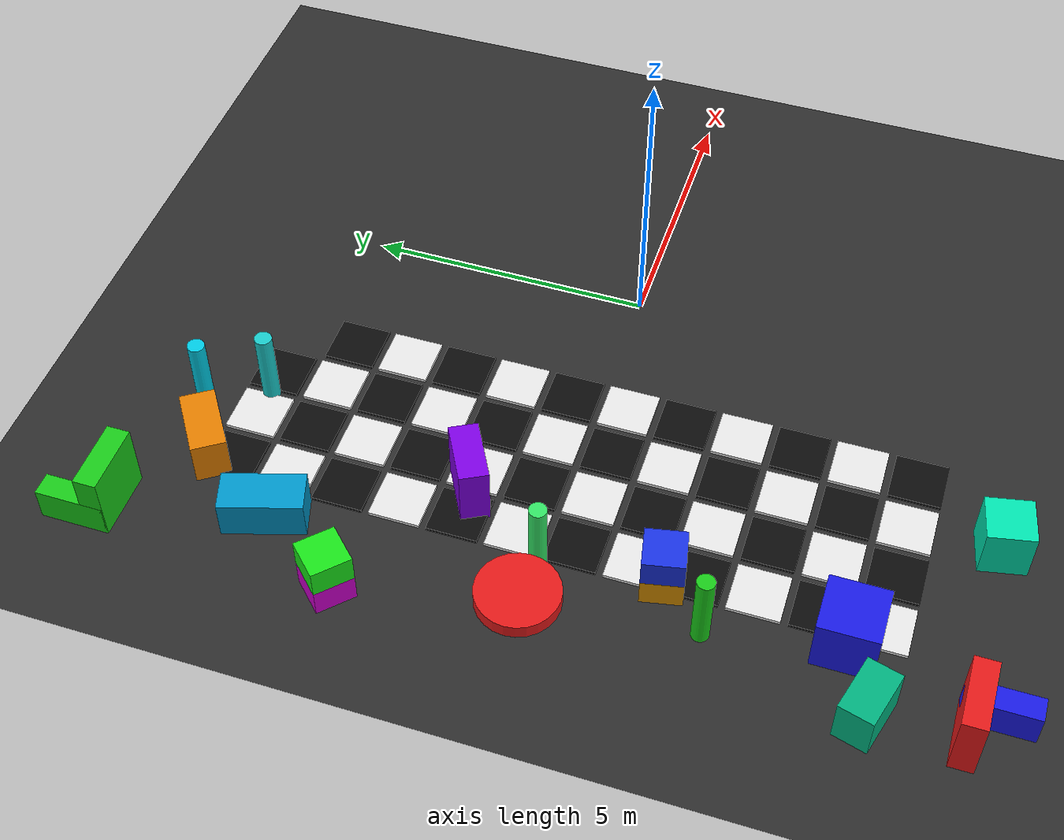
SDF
<sdf version="1.9">
 <world name="slam_world_realistic">
  <model name="ground_plane">
   <static>true</static>
   <link name="ground_link">
    <collision name="collision">
     <geometry><plane><normal>0 0 1</normal><size>80 80</size></plane></geometry>
    </collision>
    <visual name="visual">
     <geometry><plane><normal>0 0 1</normal><size>80 80</size></plane></geometry>
     <material>
      <ambient>0.15 0.15 0.15 1</ambient>
      <diffuse>0.18 0.18 0.18 1</diffuse>
      <specular>0.02 0.02 0.02 1</specular>
     </material>
    </visual>
   </link>
  </model>
  <model name="cb_0">
   <static>true</static>
   <pose>-5.500 -5.500 0.03 0 0 0</pose>
   <link name="link">
    <collision name="col"><geometry><box><size>0.88 0.88 0.06</size></box></geometry></collision>
    <visual name="vis">
     <geometry><box><size>0.88 0.88 0.06</size></box></geometry>
     <material>
      <ambient>0.910 0.910 0.910 1</ambient>
      <diffuse>0.910 0.910 0.910 1</diffuse>
      <specular>0.080 0.080 0.080 1</specular>
     </material>
    </visual>
   </link>
  </model>
  <model name="cb_1">
   <static>true</static>
   <pose>-5.500 -4.500 0.03 0 0 0</pose>
   <link name="link">
    <collision name="col"><geometry><box><size>0.88 0.88 0.06</size></box></geometry></collision>
    <visual name="vis">
     <geometry><box><size>0.88 0.88 0.06</size></box></geometry>
     <material>
      <ambient>0.050 0.050 0.050 1</ambient>
      <diffuse>0.050 0.050 0.050 1</diffuse>
      <specular>0.020 0.020 0.020 1</specular>
     </material>
    </visual>
   </link>
  </model>
  <model name="cb_2">
   <static>true</static>
   <pose>-5.500 -3.500 0.03 0 0 0</pose>
   <link name="link">
    <collision name="col"><geometry><box><size>0.88 0.88 0.06</size></box></geometry></collision>
    <visual name="vis">
     <geometry><box><size>0.88 0.88 0.06</size></box></geometry>
     <material>
      <ambient>0.910 0.910 0.910 1</ambient>
      <diffuse>0.910 0.910 0.910 1</diffuse>
      <specular>0.080 0.080 0.080 1</specular>
     </material>
    </visual>
   </link>
  </model>
  <model name="cb_3">
   <static>true</static>
   <pose>-5.500 -2.500 0.03 0 0 0</pose>
   <link name="link">
    <collision name="col"><geometry><box><size>0.88 0.88 0.06</size></box></geometry></collision>
    <visual name="vis">
     <geometry><box><size>0.88 0.88 0.06</size></box></geometry>
     <material>
      <ambient>0.050 0.050 0.050 1</ambient>
      <diffuse>0.050 0.050 0.050 1</diffuse>
      <specular>0.020 0.020 0.020 1</specular>
     </material>
    </visual>
   </link>
  </model>
  <model name="cb_4">
   <static>true</static>
   <pose>-5.500 -1.500 0.03 0 0 0</pose>
   <link name="link">
    <collision name="col"><geometry><box><size>0.88 0.88 0.06</size></box></geometry></collision>
    <visual name="vis">
     <geometry><box><size>0.88 0.88 0.06</size></box></geometry>
     <material>
      <ambient>0.910 0.910 0.910 1</ambient>
      <diffuse>0.910 0.910 0.910 1</diffuse>
      <specular>0.080 0.080 0.080 1</specular>
     </material>
    </visual>
   </link>
  </model>
  <model name="cb_5">
   <static>true</static>
   <pose>-5.500 -0.500 0.03 0 0 0</pose>
   <link name="link">
    <collision name="col"><geometry><box><size>0.88 0.88 0.06</size></box></geometry></collision>
    <visual name="vis">
     <geometry><box><size>0.88 0.88 0.06</size></box></geometry>
     <material>
      <ambient>0.050 0.050 0.050 1</ambient>
      <diffuse>0.050 0.050 0.050 1</diffuse>
      <specular>0.020 0.020 0.020 1</specular>
     </material>
    </visual>
   </link>
  </model>
  <model name="cb_6">
   <static>true</static>
   <pose>-5.500 0.500 0.03 0 0 0</pose>
   <link name="link">
    <collision name="col"><geometry><box><size>0.88 0.88 0.06</size></box></geometry></collision>
    <visual name="vis">
     <geometry><box><size>0.88 0.88 0.06</size></box></geometry>
     <material>
      <ambient>0.910 0.910 0.910 1</ambient>
      <diffuse>0.910 0.910 0.910 1</diffuse>
      <specular>0.080 0.080 0.080 1</specular>
     </material>
    </visual>
   </link>
  </model>
  <model name="cb_7">
   <static>true</static>
   <pose>-5.500 1.500 0.03 0 0 0</pose>
   <link name="link">
    <collision name="col"><geometry><box><size>0.88 0.88 0.06</size></box></geometry></collision>
    <visual name="vis">
     <geometry><box><size>0.88 0.88 0.06</size></box></geometry>
     <material>
      <ambient>0.050 0.050 0.050 1</ambient>
      <diffuse>0.050 0.050 0.050 1</diffuse>
      <specular>0.020 0.020 0.020 1</specular>
     </material>
    </visual>
   </link>
  </model>
  <model name="cb_8">
   <static>true</static>
   <pose>-5.500 2.500 0.03 0 0 0</pose>
   <link name="link">
    <collision name="col"><geometry><box><size>0.88 0.88 0.06</size></box></geometry></collision>
    <visual name="vis">
     <geometry><box><size>0.88 0.88 0.06</size></box></geometry>
     <material>
      <ambient>0.910 0.910 0.910 1</ambient>
      <diffuse>0.910 0.910 0.910 1</diffuse>
      <specular>0.080 0.080 0.080 1</specular>
     </material>
    </visual>
   </link>
  </model>
  <model name="cb_9">
   <static>true</static>
   <pose>-5.500 3.500 0.03 0 0 0</pose>
   <link name="link">
    <collision name="col"><geometry><box><size>0.88 0.88 0.06</size></box></geometry></collision>
    <visual name="vis">
     <geometry><box><size>0.88 0.88 0.06</size></box></geometry>
     <material>
      <ambient>0.050 0.050 0.050 1</ambient>
      <diffuse>0.050 0.050 0.050 1</diffuse>
      <specular>0.020 0.020 0.020 1</specular>
     </material>
    </visual>
   </link>
  </model>
  <model name="cb_10">
   <static>true</static>
   <pose>-5.500 4.500 0.03 0 0 0</pose>
   <link name="link">
    <collision name="col"><geometry><box><size>0.88 0.88 0.06</size></box></geometry></collision>
    <visual name="vis">
     <geometry><box><size>0.88 0.88 0.06</size></box></geometry>
     <material>
      <ambient>0.910 0.910 0.910 1</ambient>
      <diffuse>0.910 0.910 0.910 1</diffuse>
      <specular>0.080 0.080 0.080 1</specular>
     </material>
    </visual>
   </link>
  </model>
  <model name="cb_11">
   <static>true</static>
   <pose>-5.500 5.500 0.03 0 0 0</pose>
   <link name="link">
    <collision name="col"><geometry><box><size>0.88 0.88 0.06</size></box></geometry></collision>
    <visual name="vis">
     <geometry><box><size>0.88 0.88 0.06</size></box></geometry>
     <material>
      <ambient>0.050 0.050 0.050 1</ambient>
      <diffuse>0.050 0.050 0.050 1</diffuse>
      <specular>0.020 0.020 0.020 1</specular>
     </material>
    </visual>
   </link>
  </model>
  <model name="cb_12">
   <static>true</static>
   <pose>-4.500 -5.500 0.03 0 0 0</pose>
   <link name="link">
    <collision name="col"><geometry><box><size>0.88 0.88 0.06</size></box></geometry></collision>
    <visual name="vis">
     <geometry><box><size>0.88 0.88 0.06</size></box></geometry>
     <material>
      <ambient>0.050 0.050 0.050 1</ambient>
      <diffuse>0.050 0.050 0.050 1</diffuse>
      <specular>0.020 0.020 0.020 1</specular>
     </material>
    </visual>
   </link>
  </model>
  <model name="cb_13">
   <static>true</static>
   <pose>-4.500 -4.500 0.03 0 0 0</pose>
   <link name="link">
    <collision name="col"><geometry><box><size>0.88 0.88 0.06</size></box></geometry></collision>
    <visual name="vis">
     <geometry><box><size>0.88 0.88 0.06</size></box></geometry>
     <material>
      <ambient>0.910 0.910 0.910 1</ambient>
      <diffuse>0.910 0.910 0.910 1</diffuse>
      <specular>0.080 0.080 0.080 1</specular>
     </material>
    </visual>
   </link>
  </model>
  <model name="cb_14">
   <static>true</static>
   <pose>-4.500 -3.500 0.03 0 0 0</pose>
   <link name="link">
    <collision name="col"><geometry><box><size>0.88 0.88 0.06</size></box></geometry></collision>
    <visual name="vis">
     <geometry><box><size>0.88 0.88 0.06</size></box></geometry>
     <material>
      <ambient>0.050 0.050 0.050 1</ambient>
      <diffuse>0.050 0.050 0.050 1</diffuse>
      <specular>0.020 0.020 0.020 1</specular>
     </material>
    </visual>
   </link>
  </model>
  <model name="cb_15">
   <static>true</static>
   <pose>-4.500 -2.500 0.03 0 0 0</pose>
   <link name="link">
    <collision name="col"><geometry><box><size>0.88 0.88 0.06</size></box></geometry></collision>
    <visual name="vis">
     <geometry><box><size>0.88 0.88 0.06</size></box></geometry>
     <material>
      <ambient>0.910 0.910 0.910 1</ambient>
      <diffuse>0.910 0.910 0.910 1</diffuse>
      <specular>0.080 0.080 0.080 1</specular>
     </material>
    </visual>
   </link>
  </model>
  <model name="cb_16">
   <static>true</static>
   <pose>-4.500 -1.500 0.03 0 0 0</pose>
   <link name="link">
    <collision name="col"><geometry><box><size>0.88 0.88 0.06</size></box></geometry></collision>
    <visual name="vis">
     <geometry><box><size>0.88 0.88 0.06</size></box></geometry>
     <material>
      <ambient>0.050 0.050 0.050 1</ambient>
      <diffuse>0.050 0.050 0.050 1</diffuse>
      <specular>0.020 0.020 0.020 1</specular>
     </material>
    </visual>
   </link>
  </model>
  <model name="cb_17">
   <static>true</static>
   <pose>-4.500 -0.500 0.03 0 0 0</pose>
   <link name="link">
    <collision name="col"><geometry><box><size>0.88 0.88 0.06</size></box></geometry></collision>
    <visual name="vis">
     <geometry><box><size>0.88 0.88 0.06</size></box></geometry>
     <material>
      <ambient>0.910 0.910 0.910 1</ambient>
      <diffuse>0.910 0.910 0.910 1</diffuse>
      <specular>0.080 0.080 0.080 1</specular>
     </material>
    </visual>
   </link>
  </model>
  <model name="cb_18">
   <static>true</static>
   <pose>-4.500 0.500 0.03 0 0 0</pose>
   <link name="link">
    <collision name="col"><geometry><box><size>0.88 0.88 0.06</size></box></geometry></collision>
    <visual name="vis">
     <geometry><box><size>0.88 0.88 0.06</size></box></geometry>
     <material>
      <ambient>0.050 0.050 0.050 1</ambient>
      <diffuse>0.050 0.050 0.050 1</diffuse>
      <specular>0.020 0.020 0.020 1</specular>
     </material>
    </visual>
   </link>
  </model>
  <model name="cb_19">
   <static>true</static>
   <pose>-4.500 1.500 0.03 0 0 0</pose>
   <link name="link">
    <collision name="col"><geometry><box><size>0.88 0.88 0.06</size></box></geometry></collision>
    <visual name="vis">
     <geometry><box><size>0.88 0.88 0.06</size></box></geometry>
     <material>
      <ambient>0.910 0.910 0.910 1</ambient>
      <diffuse>0.910 0.910 0.910 1</diffuse>
      <specular>0.080 0.080 0.080 1</specular>
     </material>
    </visual>
   </link>
  </model>
  <model name="cb_20">
   <static>true</static>
   <pose>-4.500 2.500 0.03 0 0 0</pose>
   <link name="link">
    <collision name="col"><geometry><box><size>0.88 0.88 0.06</size></box></geometry></collision>
    <visual name="vis">
     <geometry><box><size>0.88 0.88 0.06</size></box></geometry>
     <material>
      <ambient>0.050 0.050 0.050 1</ambient>
      <diffuse>0.050 0.050 0.050 1</diffuse>
      <specular>0.020 0.020 0.020 1</specular>
     </material>
    </visual>
   </link>
  </model>
  <model name="cb_21">
   <static>true</static>
   <pose>-4.500 3.500 0.03 0 0 0</pose>
   <link name="link">
    <collision name="col"><geometry><box><size>0.88 0.88 0.06</size></box></geometry></collision>
    <visual name="vis">
     <geometry><box><size>0.88 0.88 0.06</size></box></geometry>
     <material>
      <ambient>0.910 0.910 0.910 1</ambient>
      <diffuse>0.910 0.910 0.910 1</diffuse>
      <specular>0.080 0.080 0.080 1</specular>
     </material>
    </visual>
   </link>
  </model>
  <model name="cb_22">
   <static>true</static>
   <pose>-4.500 4.500 0.03 0 0 0</pose>
   <link name="link">
    <collision name="col"><geometry><box><size>0.88 0.88 0.06</size></box></geometry></collision>
    <visual name="vis">
     <geometry><box><size>0.88 0.88 0.06</size></box></geometry>
     <material>
      <ambient>0.050 0.050 0.050 1</ambient>
      <diffuse>0.050 0.050 0.050 1</diffuse>
      <specular>0.020 0.020 0.020 1</specular>
     </material>
    </visual>
   </link>
  </model>
  <model name="cb_23">
   <static>true</static>
   <pose>-4.500 5.500 0.03 0 0 0</pose>
   <link name="link">
    <collision name="col"><geometry><box><size>0.88 0.88 0.06</size></box></geometry></collision>
    <visual name="vis">
     <geometry><box><size>0.88 0.88 0.06</size></box></geometry>
     <material>
      <ambient>0.910 0.910 0.910 1</ambient>
      <diffuse>0.910 0.910 0.910 1</diffuse>
      <specular>0.080 0.080 0.080 1</specular>
     </material>
    </visual>
   </link>
  </model>
  <model name="cb_24">
   <static>true</static>
   <pose>-3.500 -5.500 0.03 0 0 0</pose>
   <link name="link">
    <collision name="col"><geometry><box><size>0.88 0.88 0.06</size></box></geometry></collision>
    <visual name="vis">
     <geometry><box><size>0.88 0.88 0.06</size></box></geometry>
     <material>
      <ambient>0.910 0.910 0.910 1</ambient>
      <diffuse>0.910 0.910 0.910 1</diffuse>
      <specular>0.080 0.080 0.080 1</specular>
     </material>
    </visual>
   </link>
  </model>
  <model name="cb_25">
   <static>true</static>
   <pose>-3.500 -4.500 0.03 0 0 0</pose>
   <link name="link">
    <collision name="col"><geometry><box><size>0.88 0.88 0.06</size></box></geometry></collision>
    <visual name="vis">
     <geometry><box><size>0.88 0.88 0.06</size></box></geometry>
     <material>
      <ambient>0.050 0.050 0.050 1</ambient>
      <diffuse>0.050 0.050 0.050 1</diffuse>
      <specular>0.020 0.020 0.020 1</specular>
     </material>
    </visual>
   </link>
  </model>
  <model name="cb_26">
   <static>true</static>
   <pose>-3.500 -3.500 0.03 0 0 0</pose>
   <link name="link">
    <collision name="col"><geometry><box><size>0.88 0.88 0.06</size></box></geometry></collision>
    <visual name="vis">
     <geometry><box><size>0.88 0.88 0.06</size></box></geometry>
     <material>
      <ambient>0.910 0.910 0.910 1</ambient>
      <diffuse>0.910 0.910 0.910 1</diffuse>
      <specular>0.080 0.080 0.080 1</specular>
     </material>
    </visual>
   </link>
  </model>
  <model name="cb_27">
   <static>true</static>
   <pose>-3.500 -2.500 0.03 0 0 0</pose>
   <link name="link">
    <collision name="col"><geometry><box><size>0.88 0.88 0.06</size></box></geometry></collision>
    <visual name="vis">
     <geometry><box><size>0.88 0.88 0.06</size></box></geometry>
     <material>
      <ambient>0.050 0.050 0.050 1</ambient>
      <diffuse>0.050 0.050 0.050 1</diffuse>
      <specular>0.020 0.020 0.020 1</specular>
     </material>
    </visual>
   </link>
  </model>
  <model name="cb_28">
   <static>true</static>
   <pose>-3.500 -1.500 0.03 0 0 0</pose>
   <link name="link">
    <collision name="col"><geometry><box><size>0.88 0.88 0.06</size></box></geometry></collision>
    <visual name="vis">
     <geometry><box><size>0.88 0.88 0.06</size></box></geometry>
     <material>
      <ambient>0.910 0.910 0.910 1</ambient>
      <diffuse>0.910 0.910 0.910 1</diffuse>
      <specular>0.080 0.080 0.080 1</specular>
     </material>
    </visual>
   </link>
  </model>
  <model name="cb_29">
   <static>true</static>
   <pose>-3.500 -0.500 0.03 0 0 0</pose>
   <link name="link">
    <collision name="col"><geometry><box><size>0.88 0.88 0.06</size></box></geometry></collision>
    <visual name="vis">
     <geometry><box><size>0.88 0.88 0.06</size></box></geometry>
     <material>
      <ambient>0.050 0.050 0.050 1</ambient>
      <diffuse>0.050 0.050 0.050 1</diffuse>
      <specular>0.020 0.020 0.020 1</specular>
     </material>
    </visual>
   </link>
  </model>
  <model name="cb_30">
   <static>true</static>
   <pose>-3.500 0.500 0.03 0 0 0</pose>
   <link name="link">
    <collision name="col"><geometry><box><size>0.88 0.88 0.06</size></box></geometry></collision>
    <visual name="vis">
     <geometry><box><size>0.88 0.88 0.06</size></box></geometry>
     <material>
      <ambient>0.910 0.910 0.910 1</ambient>
      <diffuse>0.910 0.910 0.910 1</diffuse>
      <specular>0.080 0.080 0.080 1</specular>
     </material>
    </visual>
   </link>
  </model>
  <model name="cb_31">
   <static>true</static>
   <pose>-3.500 1.500 0.03 0 0 0</pose>
   <link name="link">
    <collision name="col"><geometry><box><size>0.88 0.88 0.06</size></box></geometry></collision>
    <visual name="vis">
     <geometry><box><size>0.88 0.88 0.06</size></box></geometry>
     <material>
      <ambient>0.050 0.050 0.050 1</ambient>
      <diffuse>0.050 0.050 0.050 1</diffuse>
      <specular>0.020 0.020 0.020 1</specular>
     </material>
    </visual>
   </link>
  </model>
  <model name="cb_32">
   <static>true</static>
   <pose>-3.500 2.500 0.03 0 0 0</pose>
   <link name="link">
    <collision name="col"><geometry><box><size>0.88 0.88 0.06</size></box></geometry></collision>
    <visual name="vis">
     <geometry><box><size>0.88 0.88 0.06</size></box></geometry>
     <material>
      <ambient>0.910 0.910 0.910 1</ambient>
      <diffuse>0.910 0.910 0.910 1</diffuse>
      <specular>0.080 0.080 0.080 1</specular>
     </material>
    </visual>
   </link>
  </model>
  <model name="cb_33">
   <static>true</static>
   <pose>-3.500 3.500 0.03 0 0 0</pose>
   <link name="link">
    <collision name="col"><geometry><box><size>0.88 0.88 0.06</size></box></geometry></collision>
    <visual name="vis">
     <geometry><box><size>0.88 0.88 0.06</size></box></geometry>
     <material>
      <ambient>0.050 0.050 0.050 1</ambient>
      <diffuse>0.050 0.050 0.050 1</diffuse>
      <specular>0.020 0.020 0.020 1</specular>
     </material>
    </visual>
   </link>
  </model>
  <model name="cb_34">
   <static>true</static>
   <pose>-3.500 4.500 0.03 0 0 0</pose>
   <link name="link">
    <collision name="col"><geometry><box><size>0.88 0.88 0.06</size></box></geometry></collision>
    <visual name="vis">
     <geometry><box><size>0.88 0.88 0.06</size></box></geometry>
     <material>
      <ambient>0.910 0.910 0.910 1</ambient>
      <diffuse>0.910 0.910 0.910 1</diffuse>
      <specular>0.080 0.080 0.080 1</specular>
     </material>
    </visual>
   </link>
  </model>
  <model name="cb_35">
   <static>true</static>
   <pose>-3.500 5.500 0.03 0 0 0</pose>
   <link name="link">
    <collision name="col"><geometry><box><size>0.88 0.88 0.06</size></box></geometry></collision>
    <visual name="vis">
     <geometry><box><size>0.88 0.88 0.06</size></box></geometry>
     <material>
      <ambient>0.050 0.050 0.050 1</ambient>
      <diffuse>0.050 0.050 0.050 1</diffuse>
      <specular>0.020 0.020 0.020 1</specular>
     </material>
    </visual>
   </link>
  </model>
  <model name="cb_36">
   <static>true</static>
   <pose>-2.500 -5.500 0.03 0 0 0</pose>
   <link name="link">
    <collision name="col"><geometry><box><size>0.88 0.88 0.06</size></box></geometry></collision>
    <visual name="vis">
     <geometry><box><size>0.88 0.88 0.06</size></box></geometry>
     <material>
      <ambient>0.050 0.050 0.050 1</ambient>
      <diffuse>0.050 0.050 0.050 1</diffuse>
      <specular>0.020 0.020 0.020 1</specular>
     </material>
    </visual>
   </link>
  </model>
  <model name="cb_37">
   <static>true</static>
   <pose>-2.500 -4.500 0.03 0 0 0</pose>
   <link name="link">
    <collision name="col"><geometry><box><size>0.88 0.88 0.06</size></box></geometry></collision>
    <visual name="vis">
     <geometry><box><size>0.88 0.88 0.06</size></box></geometry>
     <material>
      <ambient>0.910 0.910 0.910 1</ambient>
      <diffuse>0.910 0.910 0.910 1</diffuse>
      <specular>0.080 0.080 0.080 1</specular>
     </material>
    </visual>
   </link>
  </model>
  <model name="cb_38">
   <static>true</static>
   <pose>-2.500 -3.500 0.03 0 0 0</pose>
   <link name="link">
    <collision name="col"><geometry><box><size>0.88 0.88 0.06</size></box></geometry></collision>
    <visual name="vis">
     <geometry><box><size>0.88 0.88 0.06</size></box></geometry>
     <material>
      <ambient>0.050 0.050 0.050 1</ambient>
      <diffuse>0.050 0.050 0.050 1</diffuse>
      <specular>0.020 0.020 0.020 1</specular>
     </material>
    </visual>
   </link>
  </model>
  <model name="cb_39">
   <static>true</static>
   <pose>-2.500 -2.500 0.03 0 0 0</pose>
   <link name="link">
    <collision name="col"><geometry><box><size>0.88 0.88 0.06</size></box></geometry></collision>
    <visual name="vis">
     <geometry><box><size>0.88 0.88 0.06</size></box></geometry>
     <material>
      <ambient>0.910 0.910 0.910 1</ambient>
      <diffuse>0.910 0.910 0.910 1</diffuse>
      <specular>0.080 0.080 0.080 1</specular>
     </material>
    </visual>
   </link>
  </model>
  <model name="cb_40">
   <static>true</static>
   <pose>-2.500 -1.500 0.03 0 0 0</pose>
   <link name="link">
    <collision name="col"><geometry><box><size>0.88 0.88 0.06</size></box></geometry></collision>
    <visual name="vis">
     <geometry><box><size>0.88 0.88 0.06</size></box></geometry>
     <material>
      <ambient>0.050 0.050 0.050 1</ambient>
      <diffuse>0.050 0.050 0.050 1</diffuse>
      <specular>0.020 0.020 0.020 1</specular>
     </material>
    </visual>
   </link>
  </model>
  <model name="cb_41">
   <static>true</static>
   <pose>-2.500 -0.500 0.03 0 0 0</pose>
   <link name="link">
    <collision name="col"><geometry><box><size>0.88 0.88 0.06</size></box></geometry></collision>
    <visual name="vis">
     <geometry><box><size>0.88 0.88 0.06</size></box></geometry>
     <material>
      <ambient>0.910 0.910 0.910 1</ambient>
      <diffuse>0.910 0.910 0.910 1</diffuse>
      <specular>0.080 0.080 0.080 1</specular>
     </material>
    </visual>
   </link>
  </model>
  <model name="cb_42">
   <static>true</static>
   <pose>-2.500 0.500 0.03 0 0 0</pose>
   <link name="link">
    <collision name="col"><geometry><box><size>0.88 0.88 0.06</size></box></geometry></collision>
    <visual name="vis">
     <geometry><box><size>0.88 0.88 0.06</size></box></geometry>
     <material>
      <ambient>0.050 0.050 0.050 1</ambient>
      <diffuse>0.050 0.050 0.050 1</diffuse>
      <specular>0.020 0.020 0.020 1</specular>
     </material>
    </visual>
   </link>
  </model>
  <model name="cb_43">
   <static>true</static>
   <pose>-2.500 1.500 0.03 0 0 0</pose>
   <link name="link">
    <collision name="col"><geometry><box><size>0.88 0.88 0.06</size></box></geometry></collision>
    <visual name="vis">
     <geometry><box><size>0.88 0.88 0.06</size></box></geometry>
     <material>
      <ambient>0.910 0.910 0.910 1</ambient>
      <diffuse>0.910 0.910 0.910 1</diffuse>
      <specular>0.080 0.080 0.080 1</specular>
     </material>
    </visual>
   </link>
  </model>
  <model name="cb_44">
   <static>true</static>
   <pose>-2.500 2.500 0.03 0 0 0</pose>
   <link name="link">
    <collision name="col"><geometry><box><size>0.88 0.88 0.06</size></box></geometry></collision>
    <visual name="vis">
     <geometry><box><size>0.88 0.88 0.06</size></box></geometry>
     <material>
      <ambient>0.050 0.050 0.050 1</ambient>
      <diffuse>0.050 0.050 0.050 1</diffuse>
      <specular>0.020 0.020 0.020 1</specular>
     </material>
    </visual>
   </link>
  </model>
  <model name="cb_45">
   <static>true</static>
   <pose>-2.500 3.500 0.03 0 0 0</pose>
   <link name="link">
    <collision name="col"><geometry><box><size>0.88 0.88 0.06</size></box></geometry></collision>
    <visual name="vis">
     <geometry><box><size>0.88 0.88 0.06</size></box></geometry>
     <material>
      <ambient>0.910 0.910 0.910 1</ambient>
      <diffuse>0.910 0.910 0.910 1</diffuse>
      <specular>0.080 0.080 0.080 1</specular>
     </material>
    </visual>
   </link>
  </model>
  <model name="cb_46">
   <static>true</static>
   <pose>-2.500 4.500 0.03 0 0 0</pose>
   <link name="link">
    <collision name="col"><geometry><box><size>0.88 0.88 0.06</size></box></geometry></collision>
    <visual name="vis">
     <geometry><box><size>0.88 0.88 0.06</size></box></geometry>
     <material>
      <ambient>0.050 0.050 0.050 1</ambient>
      <diffuse>0.050 0.050 0.050 1</diffuse>
      <specular>0.020 0.020 0.020 1</specular>
     </material>
    </visual>
   </link>
  </model>
  <model name="pillar_0">
   <static>true</static>
   <pose>-6.00 0.00 0.70 0 0 0</pose>
   <link name="link">
    <collision name="col">
     <geometry><cylinder><radius>0.15</radius><length>1.4</length></cylinder></geometry>
    </collision>
    <visual name="vis">
     <geometry><cylinder><radius>0.15</radius><length>1.4</length></cylinder></geometry>
     <material>
      <ambient>0.20 0.90 0.40 1</ambient>
      <diffuse>0.20 0.90 0.40 1</diffuse>
      <specular>0.35 0.35 0.35 1</specular>
     </material>
    </visual>
   </link>
  </model>
  <model name="pillar_5">
   <static>true</static>
   <pose>-4.00 5.50 0.70 0 0 0</pose>
   <link name="link">
    <collision name="col">
     <geometry><cylinder><radius>0.15</radius><length>1.4</length></cylinder></geometry>
    </collision>
    <visual name="vis">
     <geometry><cylinder><radius>0.15</radius><length>1.4</length></cylinder></geometry>
     <material>
      <ambient>0.10 0.80 0.80 1</ambient>
      <diffuse>0.10 0.80 0.80 1</diffuse>
      <specular>0.30 0.30 0.30 1</specular>
     </material>
    </visual>
   </link>
  </model>
  <model name="pillar_9">
   <static>true</static>
   <pose>-6.50 -2.80 0.70 0 0 0</pose>
   <link name="link">
    <collision name="col">
     <geometry><cylinder><radius>0.15</radius><length>1.4</length></cylinder></geometry>
    </collision>
    <visual name="vis">
     <geometry><cylinder><radius>0.15</radius><length>1.4</length></cylinder></geometry>
     <material>
      <ambient>0.10 0.80 0.10 1</ambient>
      <diffuse>0.10 0.80 0.10 1</diffuse>
      <specular>0.25 0.25 0.25 1</specular>
     </material>
    </visual>
   </link>
  </model>
  <model name="pillar_11">
   <static>true</static>
   <pose>-4.50 6.50 0.70 0 0 0</pose>
   <link name="link">
    <collision name="col">
     <geometry><cylinder><radius>0.15</radius><length>1.4</length></cylinder></geometry>
    </collision>
    <visual name="vis">
     <geometry><cylinder><radius>0.15</radius><length>1.4</length></cylinder></geometry>
     <material>
      <ambient>0.00 0.80 0.90 1</ambient>
      <diffuse>0.00 0.80 0.90 1</diffuse>
      <specular>0.25 0.25 0.25 1</specular>
     </material>
    </visual>
   </link>
  </model>
  <model name="fat_cyl_0">
   <static>true</static>
   <pose>-7.00 0.00 0.50 0 0 0</pose>
   <link name="link">
    <collision name="col">
     <geometry><cylinder><radius>0.7</radius><length>0.25</length></cylinder></geometry>
    </collision>
    <visual name="vis">
     <geometry><cylinder><radius>0.7</radius><length>0.25</length></cylinder></geometry>
     <material>
      <ambient>0.90 0.10 0.10 1</ambient>
      <diffuse>0.90 0.10 0.10 1</diffuse>
      <specular>0.40 0.40 0.40 1</specular>
     </material>
    </visual>
   </link>
  </model>
  <model name="mbox_1">
   <static>true</static>
   <pose>-6.00 -5.00 0.50 0 0 0.00</pose>
   <link name="link">
    <collision name="col"><geometry><box><size>1.00 1.00 1.00</size></box></geometry></collision>
    <visual name="vis">
     <geometry><box><size>1.00 1.00 1.00</size></box></geometry>
     <material>
      <ambient>0.10 0.10 0.90 1</ambient>
      <diffuse>0.10 0.10 0.90 1</diffuse>
      <specular>0.15 0.15 0.15 1</specular>
     </material>
    </visual>
   </link>
  </model>
  <model name="mbox_3">
   <static>true</static>
   <pose>-5.50 6.00 0.40 0 0 0.60</pose>
   <link name="link">
    <collision name="col"><geometry><box><size>1.20 0.60 0.80</size></box></geometry></collision>
    <visual name="vis">
     <geometry><box><size>1.20 0.60 0.80</size></box></geometry>
     <material>
      <ambient>0.90 0.50 0.00 1</ambient>
      <diffuse>0.90 0.50 0.00 1</diffuse>
      <specular>0.15 0.15 0.15 1</specular>
     </material>
    </visual>
   </link>
  </model>
  <model name="mbox_4">
   <static>true</static>
   <pose>-6.50 4.50 0.35 0 0 0.30</pose>
   <link name="link">
    <collision name="col"><geometry><box><size>0.70 1.40 0.70</size></box></geometry></collision>
    <visual name="vis">
     <geometry><box><size>0.70 1.40 0.70</size></box></geometry>
     <material>
      <ambient>0.00 0.60 0.80 1</ambient>
      <diffuse>0.00 0.60 0.80 1</diffuse>
      <specular>0.15 0.15 0.15 1</specular>
     </material>
    </visual>
   </link>
  </model>
  <model name="mbox_6">
   <static>true</static>
   <pose>-5.00 1.50 0.55 0 0 0.50</pose>
   <link name="link">
    <collision name="col"><geometry><box><size>1.10 0.50 1.10</size></box></geometry></collision>
    <visual name="vis">
     <geometry><box><size>1.10 0.50 1.10</size></box></geometry>
     <material>
      <ambient>0.50 0.00 0.90 1</ambient>
      <diffuse>0.50 0.00 0.90 1</diffuse>
      <specular>0.15 0.15 0.15 1</specular>
     </material>
    </visual>
   </link>
  </model>
  <model name="mbox_9">
   <static>true</static>
   <pose>-3.50 -7.00 0.45 0 0 0.20</pose>
   <link name="link">
    <collision name="col"><geometry><box><size>0.80 0.80 0.90</size></box></geometry></collision>
    <visual name="vis">
     <geometry><box><size>0.80 0.80 0.90</size></box></geometry>
     <material>
      <ambient>0.00 0.90 0.70 1</ambient>
      <diffuse>0.00 0.90 0.70 1</diffuse>
      <specular>0.15 0.15 0.15 1</specular>
     </material>
    </visual>
   </link>
  </model>
  <model name="mbox_11">
   <static>true</static>
   <pose>-7.20 -5.50 0.40 0 0 1.30</pose>
   <link name="link">
    <collision name="col"><geometry><box><size>0.60 1.00 0.80</size></box></geometry></collision>
    <visual name="vis">
     <geometry><box><size>0.60 1.00 0.80</size></box></geometry>
     <material>
      <ambient>0.00 0.70 0.50 1</ambient>
      <diffuse>0.00 0.70 0.50 1</diffuse>
      <specular>0.15 0.15 0.15 1</specular>
     </material>
    </visual>
   </link>
  </model>
  <model name="stripe_lo_3">
   <static>true</static>
   <pose>-7.50 3.00 0.25 0 0 0.80</pose>
   <link name="link">
    <collision name="col"><geometry><box><size>0.70 0.70 0.50</size></box></geometry></collision>
    <visual name="vis">
     <geometry><box><size>0.70 0.70 0.50</size></box></geometry>
     <material>
      <ambient>0.80 0.00 0.80 1</ambient>
      <diffuse>0.80 0.00 0.80 1</diffuse>
      <specular>0.30 0.30 0.30 1</specular>
     </material>
    </visual>
   </link>
  </model>
  <model name="stripe_hi_3">
   <static>true</static>
   <pose>-7.50 3.00 0.75 0 0 0.80</pose>
   <link name="link">
    <collision name="col"><geometry><box><size>0.70 0.70 0.50</size></box></geometry></collision>
    <visual name="vis">
     <geometry><box><size>0.70 0.70 0.50</size></box></geometry>
     <material>
      <ambient>0.10 0.90 0.10 1</ambient>
      <diffuse>0.10 0.90 0.10 1</diffuse>
      <specular>0.30 0.30 0.30 1</specular>
     </material>
    </visual>
   </link>
  </model>
  <model name="stripe_lo_5">
   <static>true</static>
   <pose>-5.80 -2.00 0.25 0 0 0.20</pose>
   <link name="link">
    <collision name="col"><geometry><box><size>0.70 0.70 0.50</size></box></geometry></collision>
    <visual name="vis">
     <geometry><box><size>0.70 0.70 0.50</size></box></geometry>
     <material>
      <ambient>0.90 0.60 0.00 1</ambient>
      <diffuse>0.90 0.60 0.00 1</diffuse>
      <specular>0.30 0.30 0.30 1</specular>
     </material>
    </visual>
   </link>
  </model>
  <model name="stripe_hi_5">
   <static>true</static>
   <pose>-5.80 -2.00 0.75 0 0 0.20</pose>
   <link name="link">
    <collision name="col"><geometry><box><size>0.70 0.70 0.50</size></box></geometry></collision>
    <visual name="vis">
     <geometry><box><size>0.70 0.70 0.50</size></box></geometry>
     <material>
      <ambient>0.10 0.20 0.90 1</ambient>
      <diffuse>0.10 0.20 0.90 1</diffuse>
      <specular>0.30 0.30 0.30 1</specular>
     </material>
    </visual>
   </link>
  </model>
  <model name="corner_a_0">
   <static>true</static>
   <pose>-7.00 -7.00 0.60 0 0 0.00</pose>
   <link name="link">
    <collision name="col"><geometry><box><size>1.20 0.40 1.20</size></box></geometry></collision>
    <visual name="vis">
     <geometry><box><size>1.20 0.40 1.20</size></box></geometry>
     <material>
      <ambient>0.90 0.10 0.10 1</ambient>
      <diffuse>0.90 0.10 0.10 1</diffuse>
      <specular>0.15 0.15 0.15 1</specular>
     </material>
    </visual>
   </link>
  </model>
  <model name="corner_b_0">
   <static>true</static>
   <pose>-6.60 -7.40 0.30 0 0 0.00</pose>
   <link name="link">
    <collision name="col"><geometry><box><size>0.40 1.20 0.60</size></box></geometry></collision>
    <visual name="vis">
     <geometry><box><size>0.40 1.20 0.60</size></box></geometry>
     <material>
      <ambient>0.10 0.10 0.90 1</ambient>
      <diffuse>0.10 0.10 0.90 1</diffuse>
      <specular>0.15 0.15 0.15 1</specular>
     </material>
    </visual>
   </link>
  </model>
  <model name="corner_a_3">
   <static>true</static>
   <pose>-7.00 7.00 0.60 0 0 0.00</pose>
   <link name="link">
    <collision name="col"><geometry><box><size>1.20 0.40 1.20</size></box></geometry></collision>
    <visual name="vis">
     <geometry><box><size>1.20 0.40 1.20</size></box></geometry>
     <material>
      <ambient>0.10 0.80 0.10 1</ambient>
      <diffuse>0.10 0.80 0.10 1</diffuse>
      <specular>0.15 0.15 0.15 1</specular>
     </material>
    </visual>
   </link>
  </model>
  <model name="corner_b_3">
   <static>true</static>
   <pose>-7.40 7.40 0.30 0 0 0.00</pose>
   <link name="link">
    <collision name="col"><geometry><box><size>0.40 1.20 0.60</size></box></geometry></collision>
    <visual name="vis">
     <geometry><box><size>0.40 1.20 0.60</size></box></geometry>
     <material>
      <ambient>0.10 0.80 0.10 1</ambient>
      <diffuse>0.10 0.80 0.10 1</diffuse>
      <specular>0.15 0.15 0.15 1</specular>
     </material>
    </visual>
   </link>
  </model>
 </world>
</sdf>
